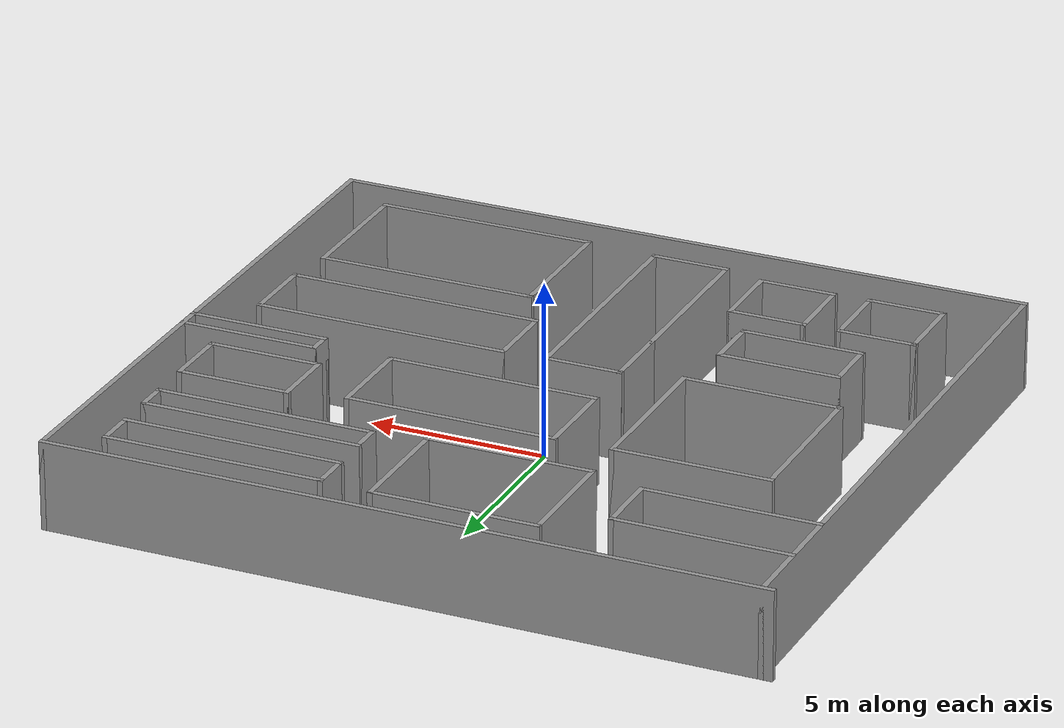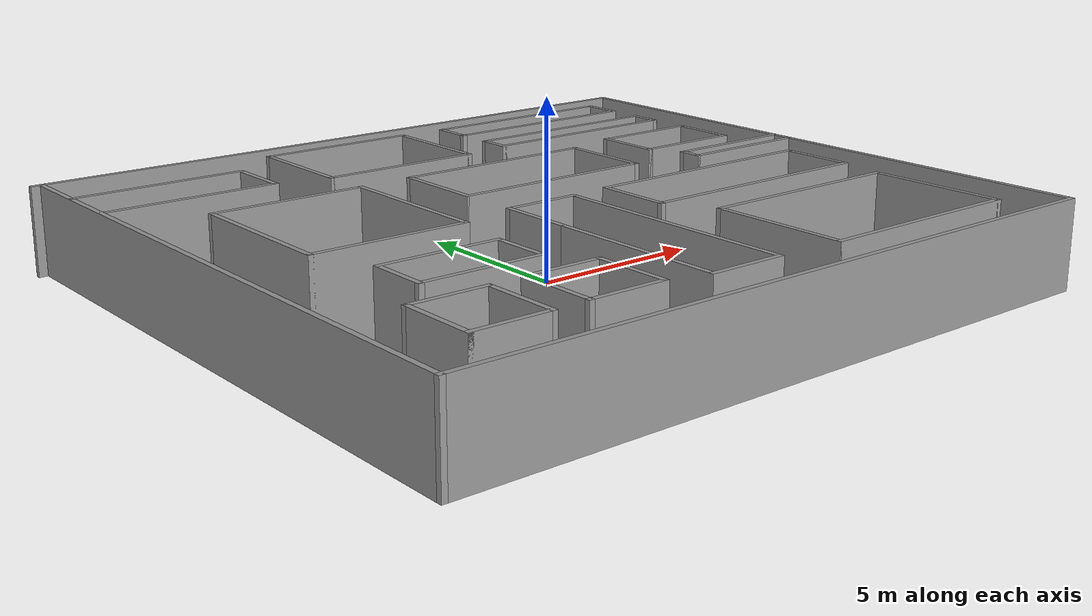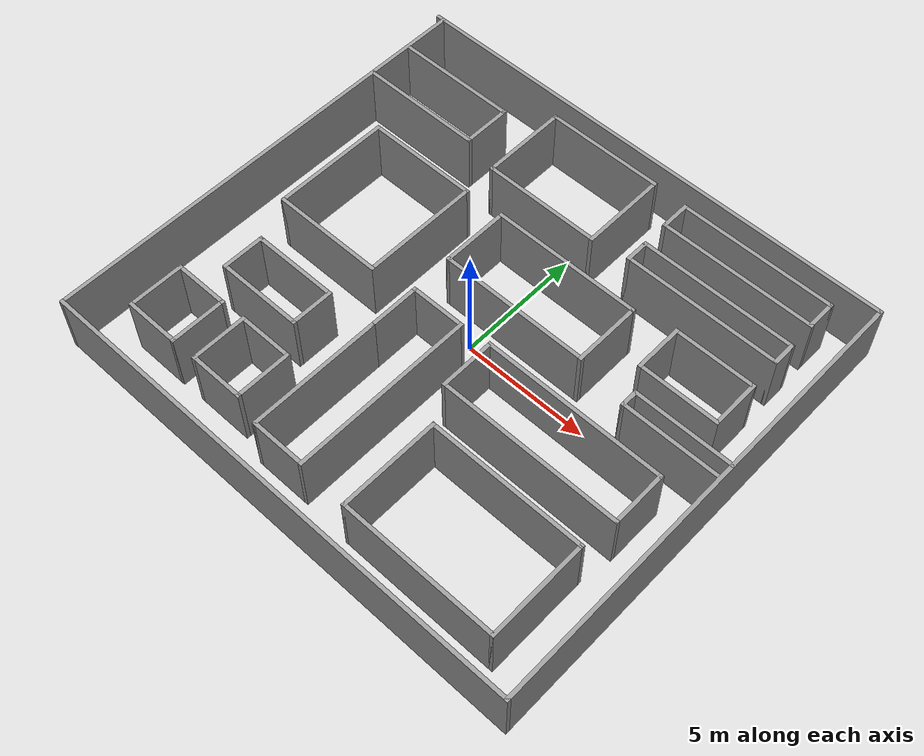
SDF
<?xml version='1.0'?>
<sdf version='1.6'>
  <model name='PathifyMap1'>
    <pose frame=''>-0.109396 -0.004523 0 0 -0 0</pose>
    <link name='Wall_100'>
      <collision name='Wall_100_Collision'>
        <geometry>
          <box>
            <size>3.25 0.15 2.5</size>
          </box>
        </geometry>
        <pose frame=''>0 0 1.25 0 -0 0</pose>
      </collision>
      <visual name='Wall_100_Visual'>
        <pose frame=''>0 0 1.25 0 -0 0</pose>
        <geometry>
          <box>
            <size>3.25 0.15 2.5</size>
          </box>
        </geometry>
        <material>
          <script>
            <uri>file://media/materials/scripts/gazebo.material</uri>
            <name>Gazebo/Grey</name>
          </script>
          <ambient>1 1 1 1</ambient>
        </material>
        <meta>
          <layer>0</layer>
        </meta>
      </visual>
      <pose frame=''>7.20719 3.89076 0 0 -0 3.14159</pose>
    </link>
    <link name='Wall_102'>
      <collision name='Wall_102_Collision'>
        <geometry>
          <box>
            <size>4 0.15 2.5</size>
          </box>
        </geometry>
        <pose frame=''>0 0 1.25 0 -0 0</pose>
      </collision>
      <visual name='Wall_102_Visual'>
        <pose frame=''>0 0 1.25 0 -0 0</pose>
        <geometry>
          <box>
            <size>4 0.15 2.5</size>
          </box>
        </geometry>
        <material>
          <script>
            <uri>file://media/materials/scripts/gazebo.material</uri>
            <name>Gazebo/Grey</name>
          </script>
          <ambient>1 1 1 1</ambient>
        </material>
        <meta>
          <layer>0</layer>
        </meta>
      </visual>
      <pose frame=''>8.1244 1.15549 0 0 -0 3.14159</pose>
    </link>
    <link name='Wall_103'>
      <collision name='Wall_103_Collision'>
        <geometry>
          <box>
            <size>0.75 0.15 2.5</size>
          </box>
        </geometry>
        <pose frame=''>0 0 1.25 0 -0 0</pose>
      </collision>
      <visual name='Wall_103_Visual'>
        <pose frame=''>0 0 1.25 0 -0 0</pose>
        <geometry>
          <box>
            <size>0.75 0.15 2.5</size>
          </box>
        </geometry>
        <material>
          <script>
            <uri>file://media/materials/scripts/gazebo.material</uri>
            <name>Gazebo/Grey</name>
          </script>
          <ambient>1 1 1 1</ambient>
        </material>
        <meta>
          <layer>0</layer>
        </meta>
      </visual>
      <pose frame=''>6.1994 0.855492 0 0 0 -1.5708</pose>
    </link>
    <link name='Wall_104'>
      <collision name='Wall_104_Collision'>
        <geometry>
          <box>
            <size>4 0.15 2.5</size>
          </box>
        </geometry>
        <pose frame=''>0 0 1.25 0 -0 0</pose>
      </collision>
      <visual name='Wall_104_Visual'>
        <pose frame=''>0 0 1.25 0 -0 0</pose>
        <geometry>
          <box>
            <size>4 0.15 2.5</size>
          </box>
        </geometry>
        <material>
          <script>
            <uri>file://media/materials/scripts/gazebo.material</uri>
            <name>Gazebo/Grey</name>
          </script>
          <ambient>1 1 1 1</ambient>
        </material>
        <meta>
          <layer>0</layer>
        </meta>
      </visual>
      <pose frame=''>8.1244 0.555492 0 0 -0 0</pose>
    </link>
    <link name='Wall_20'>
      <collision name='Wall_20_Collision'>
        <geometry>
          <box>
            <size>20.25 0.15 2.5</size>
          </box>
        </geometry>
        <pose frame=''>0 0 1.25 0 -0 0</pose>
      </collision>
      <visual name='Wall_20_Visual'>
        <pose frame=''>0 0 1.25 0 -0 0</pose>
        <geometry>
          <box>
            <size>20.25 0.15 2.5</size>
          </box>
        </geometry>
        <material>
          <script>
            <uri>file://media/materials/scripts/gazebo.material</uri>
            <name>Gazebo/Grey</name>
          </script>
          <ambient>1 1 1 1</ambient>
        </material>
        <meta>
          <layer>0</layer>
        </meta>
      </visual>
      <pose frame=''>0 9.05 0 0 -0 0</pose>
    </link>
    <link name='Wall_21'>
      <collision name='Wall_21_Collision'>
        <geometry>
          <box>
            <size>18.25 0.15 2.5</size>
          </box>
        </geometry>
        <pose frame=''>0 0 1.25 0 -0 0</pose>
      </collision>
      <visual name='Wall_21_Visual'>
        <pose frame=''>0 0 1.25 0 -0 0</pose>
        <geometry>
          <box>
            <size>18.25 0.15 2.5</size>
          </box>
        </geometry>
        <material>
          <script>
            <uri>file://media/materials/scripts/gazebo.material</uri>
            <name>Gazebo/Grey</name>
          </script>
          <ambient>1 1 1 1</ambient>
        </material>
        <meta>
          <layer>0</layer>
        </meta>
      </visual>
      <pose frame=''>10.05 0 0 0 0 -1.5708</pose>
    </link>
    <link name='Wall_22'>
      <collision name='Wall_22_Collision'>
        <geometry>
          <box>
            <size>20 0.15 2.5</size>
          </box>
        </geometry>
        <pose frame=''>0 0 1.25 0 -0 0</pose>
      </collision>
      <visual name='Wall_22_Visual'>
        <pose frame=''>0 0 1.25 0 -0 0</pose>
        <geometry>
          <box>
            <size>20 0.15 2.5</size>
          </box>
        </geometry>
        <material>
          <script>
            <uri>file://media/materials/scripts/gazebo.material</uri>
            <name>Gazebo/Grey</name>
          </script>
          <ambient>1 1 1 1</ambient>
        </material>
        <meta>
          <layer>0</layer>
        </meta>
      </visual>
      <pose frame=''>0.125 -9.05 0 0 -0 3.14159</pose>
    </link>
    <link name='Wall_23'>
      <collision name='Wall_23_Collision'>
        <geometry>
          <box>
            <size>18.25 0.15 2.5</size>
          </box>
        </geometry>
        <pose frame=''>0 0 1.25 0 -0 0</pose>
      </collision>
      <visual name='Wall_23_Visual'>
        <pose frame=''>0 0 1.25 0 -0 0</pose>
        <geometry>
          <box>
            <size>18.25 0.15 2.5</size>
          </box>
        </geometry>
        <material>
          <script>
            <uri>file://media/materials/scripts/gazebo.material</uri>
            <name>Gazebo/Grey</name>
          </script>
          <ambient>1 1 1 1</ambient>
        </material>
        <meta>
          <layer>0</layer>
        </meta>
      </visual>
      <pose frame=''>-9.8 0 0 0 -0 1.5708</pose>
    </link>
    <link name='Wall_30'>
      <collision name='Wall_30_Collision'>
        <geometry>
          <box>
            <size>2.25 0.15 2.5</size>
          </box>
        </geometry>
        <pose frame=''>0 0 1.25 0 -0 0</pose>
      </collision>
      <visual name='Wall_30_Visual'>
        <pose frame=''>0 0 1.25 0 -0 0</pose>
        <geometry>
          <box>
            <size>2.25 0.15 2.5</size>
          </box>
        </geometry>
        <material>
          <script>
            <uri>file://media/materials/scripts/gazebo.material</uri>
            <name>Gazebo/Grey</name>
          </script>
          <ambient>1 1 1 1</ambient>
        </material>
        <meta>
          <layer>0</layer>
        </meta>
      </visual>
      <pose frame=''>-7.00655 -7.5586 0 0 -0 0</pose>
    </link>
    <link name='Wall_31'>
      <collision name='Wall_31_Collision'>
        <geometry>
          <box>
            <size>2.25 0.15 2.5</size>
          </box>
        </geometry>
        <pose frame=''>0 0 1.25 0 -0 0</pose>
      </collision>
      <visual name='Wall_31_Visual'>
        <pose frame=''>0 0 1.25 0 -0 0</pose>
        <geometry>
          <box>
            <size>2.25 0.15 2.5</size>
          </box>
        </geometry>
        <material>
          <script>
            <uri>file://media/materials/scripts/gazebo.material</uri>
            <name>Gazebo/Grey</name>
          </script>
          <ambient>1 1 1 1</ambient>
        </material>
        <meta>
          <layer>0</layer>
        </meta>
      </visual>
      <pose frame=''>-5.95655 -6.5086 0 0 -0 1.5708</pose>
    </link>
    <link name='Wall_32'>
      <collision name='Wall_32_Collision'>
        <geometry>
          <box>
            <size>2.25 0.15 2.5</size>
          </box>
        </geometry>
        <pose frame=''>0 0 1.25 0 -0 0</pose>
      </collision>
      <visual name='Wall_32_Visual'>
        <pose frame=''>0 0 1.25 0 -0 0</pose>
        <geometry>
          <box>
            <size>2.25 0.15 2.5</size>
          </box>
        </geometry>
        <material>
          <script>
            <uri>file://media/materials/scripts/gazebo.material</uri>
            <name>Gazebo/Grey</name>
          </script>
          <ambient>1 1 1 1</ambient>
        </material>
        <meta>
          <layer>0</layer>
        </meta>
      </visual>
      <pose frame=''>-7.00655 -5.4586 0 0 -0 3.14159</pose>
    </link>
    <link name='Wall_33'>
      <collision name='Wall_33_Collision'>
        <geometry>
          <box>
            <size>2.25 0.15 2.5</size>
          </box>
        </geometry>
        <pose frame=''>0 0 1.25 0 -0 0</pose>
      </collision>
      <visual name='Wall_33_Visual'>
        <pose frame=''>0 0 1.25 0 -0 0</pose>
        <geometry>
          <box>
            <size>2.25 0.15 2.5</size>
          </box>
        </geometry>
        <material>
          <script>
            <uri>file://media/materials/scripts/gazebo.material</uri>
            <name>Gazebo/Grey</name>
          </script>
          <ambient>1 1 1 1</ambient>
        </material>
        <meta>
          <layer>0</layer>
        </meta>
      </visual>
      <pose frame=''>-8.05655 -6.5086 0 0 0 -1.5708</pose>
    </link>
    <link name='Wall_36'>
      <collision name='Wall_36_Collision'>
        <geometry>
          <box>
            <size>2.25 0.15 2.5</size>
          </box>
        </geometry>
        <pose frame=''>0 0 1.25 0 -0 0</pose>
      </collision>
      <visual name='Wall_36_Visual'>
        <pose frame=''>0 0 1.25 0 -0 0</pose>
        <geometry>
          <box>
            <size>2.25 0.15 2.5</size>
          </box>
        </geometry>
        <material>
          <script>
            <uri>file://media/materials/scripts/gazebo.material</uri>
            <name>Gazebo/Grey</name>
          </script>
          <ambient>1 1 1 1</ambient>
        </material>
        <meta>
          <layer>0</layer>
        </meta>
      </visual>
      <pose frame=''>-3.89848 -5.42383 0 0 -0 0</pose>
    </link>
    <link name='Wall_37'>
      <collision name='Wall_37_Collision'>
        <geometry>
          <box>
            <size>2.25 0.15 2.5</size>
          </box>
        </geometry>
        <pose frame=''>0 0 1.25 0 -0 0</pose>
      </collision>
      <visual name='Wall_37_Visual'>
        <pose frame=''>0 0 1.25 0 -0 0</pose>
        <geometry>
          <box>
            <size>2.25 0.15 2.5</size>
          </box>
        </geometry>
        <material>
          <script>
            <uri>file://media/materials/scripts/gazebo.material</uri>
            <name>Gazebo/Grey</name>
          </script>
          <ambient>1 1 1 1</ambient>
        </material>
        <meta>
          <layer>0</layer>
        </meta>
      </visual>
      <pose frame=''>-2.84848 -6.47383 0 0 0 -1.5708</pose>
    </link>
    <link name='Wall_38'>
      <collision name='Wall_38_Collision'>
        <geometry>
          <box>
            <size>2.25 0.15 2.5</size>
          </box>
        </geometry>
        <pose frame=''>0 0 1.25 0 -0 0</pose>
      </collision>
      <visual name='Wall_38_Visual'>
        <pose frame=''>0 0 1.25 0 -0 0</pose>
        <geometry>
          <box>
            <size>2.25 0.15 2.5</size>
          </box>
        </geometry>
        <material>
          <script>
            <uri>file://media/materials/scripts/gazebo.material</uri>
            <name>Gazebo/Grey</name>
          </script>
          <ambient>1 1 1 1</ambient>
        </material>
        <meta>
          <layer>0</layer>
        </meta>
      </visual>
      <pose frame=''>-3.89848 -7.52383 0 0 -0 3.14159</pose>
    </link>
    <link name='Wall_39'>
      <collision name='Wall_39_Collision'>
        <geometry>
          <box>
            <size>2.25 0.15 2.5</size>
          </box>
        </geometry>
        <pose frame=''>0 0 1.25 0 -0 0</pose>
      </collision>
      <visual name='Wall_39_Visual'>
        <pose frame=''>0 0 1.25 0 -0 0</pose>
        <geometry>
          <box>
            <size>2.25 0.15 2.5</size>
          </box>
        </geometry>
        <material>
          <script>
            <uri>file://media/materials/scripts/gazebo.material</uri>
            <name>Gazebo/Grey</name>
          </script>
          <ambient>1 1 1 1</ambient>
        </material>
        <meta>
          <layer>0</layer>
        </meta>
      </visual>
      <pose frame=''>-4.94848 -6.47383 0 0 -0 1.5708</pose>
    </link>
    <link name='Wall_41'>
      <collision name='Wall_41_Collision'>
        <geometry>
          <box>
            <size>3.5 0.15 2.5</size>
          </box>
        </geometry>
        <pose frame=''>0 0 1.25 0 -0 0</pose>
      </collision>
      <visual name='Wall_41_Visual'>
        <pose frame=''>0 0 1.25 0 -0 0</pose>
        <geometry>
          <box>
            <size>3.5 0.15 2.5</size>
          </box>
        </geometry>
        <material>
          <script>
            <uri>file://media/materials/scripts/gazebo.material</uri>
            <name>Gazebo/Grey</name>
          </script>
          <ambient>1 1 1 1</ambient>
        </material>
        <meta>
          <layer>0</layer>
        </meta>
      </visual>
      <pose frame=''>-5.32185 -2.79874 0 0 -0 0</pose>
    </link>
    <link name='Wall_42'>
      <collision name='Wall_42_Collision'>
        <geometry>
          <box>
            <size>1.75 0.15 2.5</size>
          </box>
        </geometry>
        <pose frame=''>0 0 1.25 0 -0 0</pose>
      </collision>
      <visual name='Wall_42_Visual'>
        <pose frame=''>0 0 1.25 0 -0 0</pose>
        <geometry>
          <box>
            <size>1.75 0.15 2.5</size>
          </box>
        </geometry>
        <material>
          <script>
            <uri>file://media/materials/scripts/gazebo.material</uri>
            <name>Gazebo/Grey</name>
          </script>
          <ambient>1 1 1 1</ambient>
        </material>
        <meta>
          <layer>0</layer>
        </meta>
      </visual>
      <pose frame=''>-3.64685 -3.59874 0 0 0 -1.5708</pose>
    </link>
    <link name='Wall_43'>
      <collision name='Wall_43_Collision'>
        <geometry>
          <box>
            <size>3.5 0.15 2.5</size>
          </box>
        </geometry>
        <pose frame=''>0 0 1.25 0 -0 0</pose>
      </collision>
      <visual name='Wall_43_Visual'>
        <pose frame=''>0 0 1.25 0 -0 0</pose>
        <geometry>
          <box>
            <size>3.5 0.15 2.5</size>
          </box>
        </geometry>
        <material>
          <script>
            <uri>file://media/materials/scripts/gazebo.material</uri>
            <name>Gazebo/Grey</name>
          </script>
          <ambient>1 1 1 1</ambient>
        </material>
        <meta>
          <layer>0</layer>
        </meta>
      </visual>
      <pose frame=''>-5.32185 -4.39874 0 0 -0 3.14159</pose>
    </link>
    <link name='Wall_44'>
      <collision name='Wall_44_Collision'>
        <geometry>
          <box>
            <size>1.75 0.15 2.5</size>
          </box>
        </geometry>
        <pose frame=''>0 0 1.25 0 -0 0</pose>
      </collision>
      <visual name='Wall_44_Visual'>
        <pose frame=''>0 0 1.25 0 -0 0</pose>
        <geometry>
          <box>
            <size>1.75 0.15 2.5</size>
          </box>
        </geometry>
        <material>
          <script>
            <uri>file://media/materials/scripts/gazebo.material</uri>
            <name>Gazebo/Grey</name>
          </script>
          <ambient>1 1 1 1</ambient>
        </material>
        <meta>
          <layer>0</layer>
        </meta>
      </visual>
      <pose frame=''>-6.99685 -3.59874 0 0 -0 1.5708</pose>
    </link>
    <link name='Wall_49'>
      <collision name='Wall_49_Collision'>
        <geometry>
          <box>
            <size>5.25 0.15 2.5</size>
          </box>
        </geometry>
        <pose frame=''>0 0 1.25 0 -0 0</pose>
      </collision>
      <visual name='Wall_49_Visual'>
        <pose frame=''>0 0 1.25 0 -0 0</pose>
        <geometry>
          <box>
            <size>5.25 0.15 2.5</size>
          </box>
        </geometry>
        <material>
          <script>
            <uri>file://media/materials/scripts/gazebo.material</uri>
            <name>Gazebo/Grey</name>
          </script>
          <ambient>1 1 1 1</ambient>
        </material>
        <meta>
          <layer>0</layer>
        </meta>
      </visual>
      <pose frame=''>-1.70689 -5.28908 0 0 0 -1.5708</pose>
    </link>
    <link name='Wall_50'>
      <collision name='Wall_50_Collision'>
        <geometry>
          <box>
            <size>2.25 0.15 2.5</size>
          </box>
        </geometry>
        <pose frame=''>0 0 1.25 0 -0 0</pose>
      </collision>
      <visual name='Wall_50_Visual'>
        <pose frame=''>0 0 1.25 0 -0 0</pose>
        <geometry>
          <box>
            <size>2.25 0.15 2.5</size>
          </box>
        </geometry>
        <material>
          <script>
            <uri>file://media/materials/scripts/gazebo.material</uri>
            <name>Gazebo/Grey</name>
          </script>
          <ambient>1 1 1 1</ambient>
        </material>
        <meta>
          <layer>0</layer>
        </meta>
      </visual>
      <pose frame=''>-0.656888 -7.83908 0 0 -0 0</pose>
    </link>
    <link name='Wall_51'>
      <collision name='Wall_51_Collision'>
        <geometry>
          <box>
            <size>7.25 0.15 2.5</size>
          </box>
        </geometry>
        <pose frame=''>0 0 1.25 0 -0 0</pose>
      </collision>
      <visual name='Wall_51_Visual'>
        <pose frame=''>0 0 1.25 0 -0 0</pose>
        <geometry>
          <box>
            <size>7.25 0.15 2.5</size>
          </box>
        </geometry>
        <material>
          <script>
            <uri>file://media/materials/scripts/gazebo.material</uri>
            <name>Gazebo/Grey</name>
          </script>
          <ambient>1 1 1 1</ambient>
        </material>
        <meta>
          <layer>0</layer>
        </meta>
      </visual>
      <pose frame=''>0.393112 -4.28908 0 0 -0 1.5708</pose>
    </link>
    <link name='Wall_52'>
      <collision name='Wall_52_Collision'>
        <geometry>
          <box>
            <size>2.25 0.15 2.5</size>
          </box>
        </geometry>
        <pose frame=''>0 0 1.25 0 -0 0</pose>
      </collision>
      <visual name='Wall_52_Visual'>
        <pose frame=''>0 0 1.25 0 -0 0</pose>
        <geometry>
          <box>
            <size>2.25 0.15 2.5</size>
          </box>
        </geometry>
        <material>
          <script>
            <uri>file://media/materials/scripts/gazebo.material</uri>
            <name>Gazebo/Grey</name>
          </script>
          <ambient>1 1 1 1</ambient>
        </material>
        <meta>
          <layer>0</layer>
        </meta>
      </visual>
      <pose frame=''>-0.656888 -0.739077 0 0 -0 3.14159</pose>
    </link>
    <link name='Wall_53'>
      <collision name='Wall_53_Collision'>
        <geometry>
          <box>
            <size>2.15 0.15 2.5</size>
          </box>
        </geometry>
        <pose frame=''>0 0 1.25 0 -0 0</pose>
      </collision>
      <visual name='Wall_53_Visual'>
        <pose frame=''>0 0 1.25 0 -0 0</pose>
        <geometry>
          <box>
            <size>2.15 0.15 2.5</size>
          </box>
        </geometry>
        <material>
          <script>
            <uri>file://media/materials/scripts/gazebo.material</uri>
            <name>Gazebo/Grey</name>
          </script>
          <ambient>1 1 1 1</ambient>
        </material>
        <meta>
          <layer>0</layer>
        </meta>
      </visual>
      <pose frame=''>-1.70689 -1.73908 0 0 0 -1.5708</pose>
    </link>
    <link name='Wall_55'>
      <collision name='Wall_55_Collision'>
        <geometry>
          <box>
            <size>7.25 0.15 2.5</size>
          </box>
        </geometry>
        <pose frame=''>0 0 1.25 0 -0 0</pose>
      </collision>
      <visual name='Wall_55_Visual'>
        <pose frame=''>0 0 1.25 0 -0 0</pose>
        <geometry>
          <box>
            <size>7.25 0.15 2.5</size>
          </box>
        </geometry>
        <material>
          <script>
            <uri>file://media/materials/scripts/gazebo.material</uri>
            <name>Gazebo/Grey</name>
          </script>
          <ambient>1 1 1 1</ambient>
        </material>
        <meta>
          <layer>0</layer>
        </meta>
      </visual>
      <pose frame=''>5.14437 -0.650934 0 0 -0 0</pose>
    </link>
    <link name='Wall_56'>
      <collision name='Wall_56_Collision'>
        <geometry>
          <box>
            <size>2.25 0.15 2.5</size>
          </box>
        </geometry>
        <pose frame=''>0 0 1.25 0 -0 0</pose>
      </collision>
      <visual name='Wall_56_Visual'>
        <pose frame=''>0 0 1.25 0 -0 0</pose>
        <geometry>
          <box>
            <size>2.25 0.15 2.5</size>
          </box>
        </geometry>
        <material>
          <script>
            <uri>file://media/materials/scripts/gazebo.material</uri>
            <name>Gazebo/Grey</name>
          </script>
          <ambient>1 1 1 1</ambient>
        </material>
        <meta>
          <layer>0</layer>
        </meta>
      </visual>
      <pose frame=''>8.69437 -1.70093 0 0 0 -1.5708</pose>
    </link>
    <link name='Wall_57'>
      <collision name='Wall_57_Collision'>
        <geometry>
          <box>
            <size>7.25 0.15 2.5</size>
          </box>
        </geometry>
        <pose frame=''>0 0 1.25 0 -0 0</pose>
      </collision>
      <visual name='Wall_57_Visual'>
        <pose frame=''>0 0 1.25 0 -0 0</pose>
        <geometry>
          <box>
            <size>7.25 0.15 2.5</size>
          </box>
        </geometry>
        <material>
          <script>
            <uri>file://media/materials/scripts/gazebo.material</uri>
            <name>Gazebo/Grey</name>
          </script>
          <ambient>1 1 1 1</ambient>
        </material>
        <meta>
          <layer>0</layer>
        </meta>
      </visual>
      <pose frame=''>5.14437 -2.75093 0 0 -0 3.14159</pose>
    </link>
    <link name='Wall_58'>
      <collision name='Wall_58_Collision'>
        <geometry>
          <box>
            <size>2.25 0.15 2.5</size>
          </box>
        </geometry>
        <pose frame=''>0 0 1.25 0 -0 0</pose>
      </collision>
      <visual name='Wall_58_Visual'>
        <pose frame=''>0 0 1.25 0 -0 0</pose>
        <geometry>
          <box>
            <size>2.25 0.15 2.5</size>
          </box>
        </geometry>
        <material>
          <script>
            <uri>file://media/materials/scripts/gazebo.material</uri>
            <name>Gazebo/Grey</name>
          </script>
          <ambient>1 1 1 1</ambient>
        </material>
        <meta>
          <layer>0</layer>
        </meta>
      </visual>
      <pose frame=''>1.59437 -1.70093 0 0 -0 1.5708</pose>
    </link>
    <link name='Wall_62'>
      <collision name='Wall_62_Collision'>
        <geometry>
          <box>
            <size>4 0.15 2.5</size>
          </box>
        </geometry>
        <pose frame=''>0 0 1.25 0 -0 0</pose>
      </collision>
      <visual name='Wall_62_Visual'>
        <pose frame=''>0 0 1.25 0 -0 0</pose>
        <geometry>
          <box>
            <size>4 0.15 2.5</size>
          </box>
        </geometry>
        <material>
          <script>
            <uri>file://media/materials/scripts/gazebo.material</uri>
            <name>Gazebo/Grey</name>
          </script>
          <ambient>1 1 1 1</ambient>
        </material>
        <meta>
          <layer>0</layer>
        </meta>
      </visual>
      <pose frame=''>2.36996 -5.99651 0 0 0 -1.5708</pose>
    </link>
    <link name='Wall_63'>
      <collision name='Wall_63_Collision'>
        <geometry>
          <box>
            <size>6.25 0.15 2.5</size>
          </box>
        </geometry>
        <pose frame=''>0 0 1.25 0 -0 0</pose>
      </collision>
      <visual name='Wall_63_Visual'>
        <pose frame=''>0 0 1.25 0 -0 0</pose>
        <geometry>
          <box>
            <size>6.25 0.15 2.5</size>
          </box>
        </geometry>
        <material>
          <script>
            <uri>file://media/materials/scripts/gazebo.material</uri>
            <name>Gazebo/Grey</name>
          </script>
          <ambient>1 1 1 1</ambient>
        </material>
        <meta>
          <layer>0</layer>
        </meta>
      </visual>
      <pose frame=''>5.41996 -7.92151 0 0 -0 0</pose>
    </link>
    <link name='Wall_64'>
      <collision name='Wall_64_Collision'>
        <geometry>
          <box>
            <size>4 0.15 2.5</size>
          </box>
        </geometry>
        <pose frame=''>0 0 1.25 0 -0 0</pose>
      </collision>
      <visual name='Wall_64_Visual'>
        <pose frame=''>0 0 1.25 0 -0 0</pose>
        <geometry>
          <box>
            <size>4 0.15 2.5</size>
          </box>
        </geometry>
        <material>
          <script>
            <uri>file://media/materials/scripts/gazebo.material</uri>
            <name>Gazebo/Grey</name>
          </script>
          <ambient>1 1 1 1</ambient>
        </material>
        <meta>
          <layer>0</layer>
        </meta>
      </visual>
      <pose frame=''>8.46996 -5.99651 0 0 -0 1.5708</pose>
    </link>
    <link name='Wall_65'>
      <collision name='Wall_65_Collision'>
        <geometry>
          <box>
            <size>6.25 0.15 2.5</size>
          </box>
        </geometry>
        <pose frame=''>0 0 1.25 0 -0 0</pose>
      </collision>
      <visual name='Wall_65_Visual'>
        <pose frame=''>0 0 1.25 0 -0 0</pose>
        <geometry>
          <box>
            <size>6.25 0.15 2.5</size>
          </box>
        </geometry>
        <material>
          <script>
            <uri>file://media/materials/scripts/gazebo.material</uri>
            <name>Gazebo/Grey</name>
          </script>
          <ambient>1 1 1 1</ambient>
        </material>
        <meta>
          <layer>0</layer>
        </meta>
      </visual>
      <pose frame=''>5.41996 -4.07151 0 0 -0 3.14159</pose>
    </link>
    <link name='Wall_67'>
      <collision name='Wall_67_Collision'>
        <geometry>
          <box>
            <size>4.75 0.15 2.5</size>
          </box>
        </geometry>
        <pose frame=''>0 0 1.25 0 -0 0</pose>
      </collision>
      <visual name='Wall_67_Visual'>
        <pose frame=''>0 0 1.25 0 -0 0</pose>
        <geometry>
          <box>
            <size>4.75 0.15 2.5</size>
          </box>
        </geometry>
        <material>
          <script>
            <uri>file://media/materials/scripts/gazebo.material</uri>
            <name>Gazebo/Grey</name>
          </script>
          <ambient>1 1 1 1</ambient>
        </material>
        <meta>
          <layer>0</layer>
        </meta>
      </visual>
      <pose frame=''>-7.70354 1.19625 0 0 0 -1.5708</pose>
    </link>
    <link name='Wall_68'>
      <collision name='Wall_68_Collision'>
        <geometry>
          <box>
            <size>4.5 0.15 2.5</size>
          </box>
        </geometry>
        <pose frame=''>0 0 1.25 0 -0 0</pose>
      </collision>
      <visual name='Wall_68_Visual'>
        <pose frame=''>0 0 1.25 0 -0 0</pose>
        <geometry>
          <box>
            <size>4.5 0.15 2.5</size>
          </box>
        </geometry>
        <material>
          <script>
            <uri>file://media/materials/scripts/gazebo.material</uri>
            <name>Gazebo/Grey</name>
          </script>
          <ambient>1 1 1 1</ambient>
        </material>
        <meta>
          <layer>0</layer>
        </meta>
      </visual>
      <pose frame=''>-5.52854 -1.10375 0 0 -0 0</pose>
    </link>
    <link name='Wall_69'>
      <collision name='Wall_69_Collision'>
        <geometry>
          <box>
            <size>4.75 0.15 2.5</size>
          </box>
        </geometry>
        <pose frame=''>0 0 1.25 0 -0 0</pose>
      </collision>
      <visual name='Wall_69_Visual'>
        <pose frame=''>0 0 1.25 0 -0 0</pose>
        <geometry>
          <box>
            <size>4.75 0.15 2.5</size>
          </box>
        </geometry>
        <material>
          <script>
            <uri>file://media/materials/scripts/gazebo.material</uri>
            <name>Gazebo/Grey</name>
          </script>
          <ambient>1 1 1 1</ambient>
        </material>
        <meta>
          <layer>0</layer>
        </meta>
      </visual>
      <pose frame=''>-3.35354 1.19625 0 0 -0 1.5708</pose>
    </link>
    <link name='Wall_70'>
      <collision name='Wall_70_Collision'>
        <geometry>
          <box>
            <size>4.5 0.15 2.5</size>
          </box>
        </geometry>
        <pose frame=''>0 0 1.25 0 -0 0</pose>
      </collision>
      <visual name='Wall_70_Visual'>
        <pose frame=''>0 0 1.25 0 -0 0</pose>
        <geometry>
          <box>
            <size>4.5 0.15 2.5</size>
          </box>
        </geometry>
        <material>
          <script>
            <uri>file://media/materials/scripts/gazebo.material</uri>
            <name>Gazebo/Grey</name>
          </script>
          <ambient>1 1 1 1</ambient>
        </material>
        <meta>
          <layer>0</layer>
        </meta>
      </visual>
      <pose frame=''>-5.52854 3.49625 0 0 -0 3.14159</pose>
    </link>
    <link name='Wall_72'>
      <collision name='Wall_72_Collision'>
        <geometry>
          <box>
            <size>2.75 0.15 2.5</size>
          </box>
        </geometry>
        <pose frame=''>0 0 1.25 0 -0 0</pose>
      </collision>
      <visual name='Wall_72_Visual'>
        <pose frame=''>0 0 1.25 0 -0 0</pose>
        <geometry>
          <box>
            <size>2.75 0.15 2.5</size>
          </box>
        </geometry>
        <material>
          <script>
            <uri>file://media/materials/scripts/gazebo.material</uri>
            <name>Gazebo/Grey</name>
          </script>
          <ambient>1 1 1 1</ambient>
        </material>
        <meta>
          <layer>0</layer>
        </meta>
      </visual>
      <pose frame=''>-1.75959 2.24885 0 0 0 -1.5708</pose>
    </link>
    <link name='Wall_73'>
      <collision name='Wall_73_Collision'>
        <geometry>
          <box>
            <size>6 0.15 2.5</size>
          </box>
        </geometry>
        <pose frame=''>0 0 1.25 0 -0 0</pose>
      </collision>
      <visual name='Wall_73_Visual'>
        <pose frame=''>0 0 1.25 0 -0 0</pose>
        <geometry>
          <box>
            <size>6 0.15 2.5</size>
          </box>
        </geometry>
        <material>
          <script>
            <uri>file://media/materials/scripts/gazebo.material</uri>
            <name>Gazebo/Grey</name>
          </script>
          <ambient>1 1 1 1</ambient>
        </material>
        <meta>
          <layer>0</layer>
        </meta>
      </visual>
      <pose frame=''>1.16541 0.948851 0 0 -0 0</pose>
    </link>
    <link name='Wall_74'>
      <collision name='Wall_74_Collision'>
        <geometry>
          <box>
            <size>2.75 0.15 2.5</size>
          </box>
        </geometry>
        <pose frame=''>0 0 1.25 0 -0 0</pose>
      </collision>
      <visual name='Wall_74_Visual'>
        <pose frame=''>0 0 1.25 0 -0 0</pose>
        <geometry>
          <box>
            <size>2.75 0.15 2.5</size>
          </box>
        </geometry>
        <material>
          <script>
            <uri>file://media/materials/scripts/gazebo.material</uri>
            <name>Gazebo/Grey</name>
          </script>
          <ambient>1 1 1 1</ambient>
        </material>
        <meta>
          <layer>0</layer>
        </meta>
      </visual>
      <pose frame=''>4.0904 2.24885 0 0 -0 1.5708</pose>
    </link>
    <link name='Wall_75'>
      <collision name='Wall_75_Collision'>
        <geometry>
          <box>
            <size>6 0.15 2.5</size>
          </box>
        </geometry>
        <pose frame=''>0 0 1.25 0 -0 0</pose>
      </collision>
      <visual name='Wall_75_Visual'>
        <pose frame=''>0 0 1.25 0 -0 0</pose>
        <geometry>
          <box>
            <size>6 0.15 2.5</size>
          </box>
        </geometry>
        <material>
          <script>
            <uri>file://media/materials/scripts/gazebo.material</uri>
            <name>Gazebo/Grey</name>
          </script>
          <ambient>1 1 1 1</ambient>
        </material>
        <meta>
          <layer>0</layer>
        </meta>
      </visual>
      <pose frame=''>1.16541 3.54885 0 0 -0 3.14159</pose>
    </link>
    <link name='Wall_77'>
      <collision name='Wall_77_Collision'>
        <geometry>
          <box>
            <size>5 0.15 2.5</size>
          </box>
        </geometry>
        <pose frame=''>0 0 1.25 0 -0 0</pose>
      </collision>
      <visual name='Wall_77_Visual'>
        <pose frame=''>0 0 1.25 0 -0 0</pose>
        <geometry>
          <box>
            <size>5 0.15 2.5</size>
          </box>
        </geometry>
        <material>
          <script>
            <uri>file://media/materials/scripts/gazebo.material</uri>
            <name>Gazebo/Grey</name>
          </script>
          <ambient>1 1 1 1</ambient>
        </material>
        <meta>
          <layer>0</layer>
        </meta>
      </visual>
      <pose frame=''>-7.35629 7.12574 0 0 -0 0</pose>
    </link>
    <link name='Wall_78'>
      <collision name='Wall_78_Collision'>
        <geometry>
          <box>
            <size>2 0.15 2.5</size>
          </box>
        </geometry>
        <pose frame=''>0 0 1.25 0 -0 0</pose>
      </collision>
      <visual name='Wall_78_Visual'>
        <pose frame=''>0 0 1.25 0 -0 0</pose>
        <geometry>
          <box>
            <size>2 0.15 2.5</size>
          </box>
        </geometry>
        <material>
          <script>
            <uri>file://media/materials/scripts/gazebo.material</uri>
            <name>Gazebo/Grey</name>
          </script>
          <ambient>1 1 1 1</ambient>
        </material>
        <meta>
          <layer>0</layer>
        </meta>
      </visual>
      <pose frame=''>-4.93129 6.20074 0 0 0 -1.5708</pose>
    </link>
    <link name='Wall_79'>
      <collision name='Wall_79_Collision'>
        <geometry>
          <box>
            <size>5 0.15 2.5</size>
          </box>
        </geometry>
        <pose frame=''>0 0 1.25 0 -0 0</pose>
      </collision>
      <visual name='Wall_79_Visual'>
        <pose frame=''>0 0 1.25 0 -0 0</pose>
        <geometry>
          <box>
            <size>5 0.15 2.5</size>
          </box>
        </geometry>
        <material>
          <script>
            <uri>file://media/materials/scripts/gazebo.material</uri>
            <name>Gazebo/Grey</name>
          </script>
          <ambient>1 1 1 1</ambient>
        </material>
        <meta>
          <layer>0</layer>
        </meta>
      </visual>
      <pose frame=''>-7.35629 5.27574 0 0 -0 3.14159</pose>
    </link>
    <link name='Wall_81'>
      <collision name='Wall_81_Collision'>
        <geometry>
          <box>
            <size>3.5 0.15 2.5</size>
          </box>
        </geometry>
        <pose frame=''>0 0 1.25 0 -0 0</pose>
      </collision>
      <visual name='Wall_81_Visual'>
        <pose frame=''>0 0 1.25 0 -0 0</pose>
        <geometry>
          <box>
            <size>3.5 0.15 2.5</size>
          </box>
        </geometry>
        <material>
          <script>
            <uri>file://media/materials/scripts/gazebo.material</uri>
            <name>Gazebo/Grey</name>
          </script>
          <ambient>1 1 1 1</ambient>
        </material>
        <meta>
          <layer>0</layer>
        </meta>
      </visual>
      <pose frame=''>-3.41654 6.55537 0 0 0 -1.5708</pose>
    </link>
    <link name='Wall_82'>
      <collision name='Wall_82_Collision'>
        <geometry>
          <box>
            <size>4.75 0.15 2.5</size>
          </box>
        </geometry>
        <pose frame=''>0 0 1.25 0 -0 0</pose>
      </collision>
      <visual name='Wall_82_Visual'>
        <pose frame=''>0 0 1.25 0 -0 0</pose>
        <geometry>
          <box>
            <size>4.75 0.15 2.5</size>
          </box>
        </geometry>
        <material>
          <script>
            <uri>file://media/materials/scripts/gazebo.material</uri>
            <name>Gazebo/Grey</name>
          </script>
          <ambient>1 1 1 1</ambient>
        </material>
        <meta>
          <layer>0</layer>
        </meta>
      </visual>
      <pose frame=''>-1.11654 4.88037 0 0 -0 0</pose>
    </link>
    <link name='Wall_83'>
      <collision name='Wall_83_Collision'>
        <geometry>
          <box>
            <size>3.5 0.15 2.5</size>
          </box>
        </geometry>
        <pose frame=''>0 0 1.25 0 -0 0</pose>
      </collision>
      <visual name='Wall_83_Visual'>
        <pose frame=''>0 0 1.25 0 -0 0</pose>
        <geometry>
          <box>
            <size>3.5 0.15 2.5</size>
          </box>
        </geometry>
        <material>
          <script>
            <uri>file://media/materials/scripts/gazebo.material</uri>
            <name>Gazebo/Grey</name>
          </script>
          <ambient>1 1 1 1</ambient>
        </material>
        <meta>
          <layer>0</layer>
        </meta>
      </visual>
      <pose frame=''>1.18346 6.55537 0 0 -0 1.5708</pose>
    </link>
    <link name='Wall_84'>
      <collision name='Wall_84_Collision'>
        <geometry>
          <box>
            <size>4.75 0.15 2.5</size>
          </box>
        </geometry>
        <pose frame=''>0 0 1.25 0 -0 0</pose>
      </collision>
      <visual name='Wall_84_Visual'>
        <pose frame=''>0 0 1.25 0 -0 0</pose>
        <geometry>
          <box>
            <size>4.75 0.15 2.5</size>
          </box>
        </geometry>
        <material>
          <script>
            <uri>file://media/materials/scripts/gazebo.material</uri>
            <name>Gazebo/Grey</name>
          </script>
          <ambient>1 1 1 1</ambient>
        </material>
        <meta>
          <layer>0</layer>
        </meta>
      </visual>
      <pose frame=''>-1.11654 8.23037 0 0 -0 3.14159</pose>
    </link>
    <link name='Wall_86'>
      <collision name='Wall_86_Collision'>
        <geometry>
          <box>
            <size>6.25 0.15 2.5</size>
          </box>
        </geometry>
        <pose frame=''>0 0 1.25 0 -0 0</pose>
      </collision>
      <visual name='Wall_86_Visual'>
        <pose frame=''>0 0 1.25 0 -0 0</pose>
        <geometry>
          <box>
            <size>6.25 0.15 2.5</size>
          </box>
        </geometry>
        <material>
          <script>
            <uri>file://media/materials/scripts/gazebo.material</uri>
            <name>Gazebo/Grey</name>
          </script>
          <ambient>1 1 1 1</ambient>
        </material>
        <meta>
          <layer>0</layer>
        </meta>
      </visual>
      <pose frame=''>5.65631 8.15146 0 0 -0 0</pose>
    </link>
    <link name='Wall_87'>
      <collision name='Wall_87_Collision'>
        <geometry>
          <box>
            <size>1.25 0.15 2.5</size>
          </box>
        </geometry>
        <pose frame=''>0 0 1.25 0 -0 0</pose>
      </collision>
      <visual name='Wall_87_Visual'>
        <pose frame=''>0 0 1.25 0 -0 0</pose>
        <geometry>
          <box>
            <size>1.25 0.15 2.5</size>
          </box>
        </geometry>
        <material>
          <script>
            <uri>file://media/materials/scripts/gazebo.material</uri>
            <name>Gazebo/Grey</name>
          </script>
          <ambient>1 1 1 1</ambient>
        </material>
        <meta>
          <layer>0</layer>
        </meta>
      </visual>
      <pose frame=''>8.70631 7.60147 0 0 0 -1.5708</pose>
    </link>
    <link name='Wall_88'>
      <collision name='Wall_88_Collision'>
        <geometry>
          <box>
            <size>6.25 0.15 2.5</size>
          </box>
        </geometry>
        <pose frame=''>0 0 1.25 0 -0 0</pose>
      </collision>
      <visual name='Wall_88_Visual'>
        <pose frame=''>0 0 1.25 0 -0 0</pose>
        <geometry>
          <box>
            <size>6.25 0.15 2.5</size>
          </box>
        </geometry>
        <material>
          <script>
            <uri>file://media/materials/scripts/gazebo.material</uri>
            <name>Gazebo/Grey</name>
          </script>
          <ambient>1 1 1 1</ambient>
        </material>
        <meta>
          <layer>0</layer>
        </meta>
      </visual>
      <pose frame=''>5.65631 7.05147 0 0 -0 3.14159</pose>
    </link>
    <link name='Wall_89'>
      <collision name='Wall_89_Collision'>
        <geometry>
          <box>
            <size>1.25 0.15 2.5</size>
          </box>
        </geometry>
        <pose frame=''>0 0 1.25 0 -0 0</pose>
      </collision>
      <visual name='Wall_89_Visual'>
        <pose frame=''>0 0 1.25 0 -0 0</pose>
        <geometry>
          <box>
            <size>1.25 0.15 2.5</size>
          </box>
        </geometry>
        <material>
          <script>
            <uri>file://media/materials/scripts/gazebo.material</uri>
            <name>Gazebo/Grey</name>
          </script>
          <ambient>1 1 1 1</ambient>
        </material>
        <meta>
          <layer>0</layer>
        </meta>
      </visual>
      <pose frame=''>2.60631 7.60147 0 0 -0 1.5708</pose>
    </link>
    <link name='Wall_92'>
      <collision name='Wall_92_Collision'>
        <geometry>
          <box>
            <size>1 0.15 2.5</size>
          </box>
        </geometry>
        <pose frame=''>0 0 1.25 0 -0 0</pose>
      </collision>
      <visual name='Wall_92_Visual'>
        <pose frame=''>0 0 1.25 0 -0 0</pose>
        <geometry>
          <box>
            <size>1 0.15 2.5</size>
          </box>
        </geometry>
        <material>
          <script>
            <uri>file://media/materials/scripts/gazebo.material</uri>
            <name>Gazebo/Grey</name>
          </script>
          <ambient>1 1 1 1</ambient>
        </material>
        <meta>
          <layer>0</layer>
        </meta>
      </visual>
      <pose frame=''>2.63261 5.54351 0 0 0 -1.5708</pose>
    </link>
    <link name='Wall_93'>
      <collision name='Wall_93_Collision'>
        <geometry>
          <box>
            <size>6.25 0.15 2.5</size>
          </box>
        </geometry>
        <pose frame=''>0 0 1.25 0 -0 0</pose>
      </collision>
      <visual name='Wall_93_Visual'>
        <pose frame=''>0 0 1.25 0 -0 0</pose>
        <geometry>
          <box>
            <size>6.25 0.15 2.5</size>
          </box>
        </geometry>
        <material>
          <script>
            <uri>file://media/materials/scripts/gazebo.material</uri>
            <name>Gazebo/Grey</name>
          </script>
          <ambient>1 1 1 1</ambient>
        </material>
        <meta>
          <layer>0</layer>
        </meta>
      </visual>
      <pose frame=''>5.68261 5.11851 0 0 -0 0</pose>
    </link>
    <link name='Wall_94'>
      <collision name='Wall_94_Collision'>
        <geometry>
          <box>
            <size>1 0.15 2.5</size>
          </box>
        </geometry>
        <pose frame=''>0 0 1.25 0 -0 0</pose>
      </collision>
      <visual name='Wall_94_Visual'>
        <pose frame=''>0 0 1.25 0 -0 0</pose>
        <geometry>
          <box>
            <size>1 0.15 2.5</size>
          </box>
        </geometry>
        <material>
          <script>
            <uri>file://media/materials/scripts/gazebo.material</uri>
            <name>Gazebo/Grey</name>
          </script>
          <ambient>1 1 1 1</ambient>
        </material>
        <meta>
          <layer>0</layer>
        </meta>
      </visual>
      <pose frame=''>8.73261 5.54351 0 0 -0 1.5708</pose>
    </link>
    <link name='Wall_95'>
      <collision name='Wall_95_Collision'>
        <geometry>
          <box>
            <size>6.25 0.15 2.5</size>
          </box>
        </geometry>
        <pose frame=''>0 0 1.25 0 -0 0</pose>
      </collision>
      <visual name='Wall_95_Visual'>
        <pose frame=''>0 0 1.25 0 -0 0</pose>
        <geometry>
          <box>
            <size>6.25 0.15 2.5</size>
          </box>
        </geometry>
        <material>
          <script>
            <uri>file://media/materials/scripts/gazebo.material</uri>
            <name>Gazebo/Grey</name>
          </script>
          <ambient>1 1 1 1</ambient>
        </material>
        <meta>
          <layer>0</layer>
        </meta>
      </visual>
      <pose frame=''>5.68261 5.96851 0 0 -0 3.14159</pose>
    </link>
    <link name='Wall_97'>
      <collision name='Wall_97_Collision'>
        <geometry>
          <box>
            <size>2 0.15 2.5</size>
          </box>
        </geometry>
        <pose frame=''>0 0 1.25 0 -0 0</pose>
      </collision>
      <visual name='Wall_97_Visual'>
        <pose frame=''>0 0 1.25 0 -0 0</pose>
        <geometry>
          <box>
            <size>2 0.15 2.5</size>
          </box>
        </geometry>
        <material>
          <script>
            <uri>file://media/materials/scripts/gazebo.material</uri>
            <name>Gazebo/Grey</name>
          </script>
          <ambient>1 1 1 1</ambient>
        </material>
        <meta>
          <layer>0</layer>
        </meta>
      </visual>
      <pose frame=''>5.65719 2.96576 0 0 0 -1.5708</pose>
    </link>
    <link name='Wall_98'>
      <collision name='Wall_98_Collision'>
        <geometry>
          <box>
            <size>3.25 0.15 2.5</size>
          </box>
        </geometry>
        <pose frame=''>0 0 1.25 0 -0 0</pose>
      </collision>
      <visual name='Wall_98_Visual'>
        <pose frame=''>0 0 1.25 0 -0 0</pose>
        <geometry>
          <box>
            <size>3.25 0.15 2.5</size>
          </box>
        </geometry>
        <material>
          <script>
            <uri>file://media/materials/scripts/gazebo.material</uri>
            <name>Gazebo/Grey</name>
          </script>
          <ambient>1 1 1 1</ambient>
        </material>
        <meta>
          <layer>0</layer>
        </meta>
      </visual>
      <pose frame=''>7.20719 2.04076 0 0 -0 0</pose>
    </link>
    <link name='Wall_99'>
      <collision name='Wall_99_Collision'>
        <geometry>
          <box>
            <size>2 0.15 2.5</size>
          </box>
        </geometry>
        <pose frame=''>0 0 1.25 0 -0 0</pose>
      </collision>
      <visual name='Wall_99_Visual'>
        <pose frame=''>0 0 1.25 0 -0 0</pose>
        <geometry>
          <box>
            <size>2 0.15 2.5</size>
          </box>
        </geometry>
        <material>
          <script>
            <uri>file://media/materials/scripts/gazebo.material</uri>
            <name>Gazebo/Grey</name>
          </script>
          <ambient>1 1 1 1</ambient>
        </material>
        <meta>
          <layer>0</layer>
        </meta>
      </visual>
      <pose frame=''>8.75719 2.96576 0 0 -0 1.5708</pose>
    </link>
    <static>1</static>
  </model>
</sdf>
